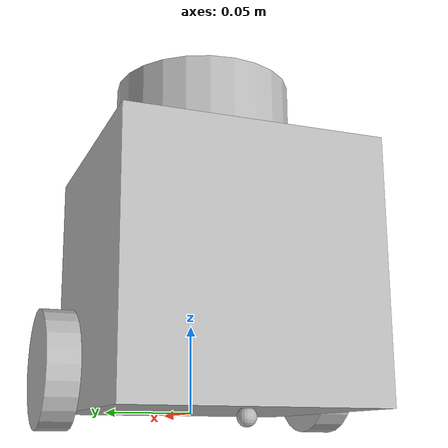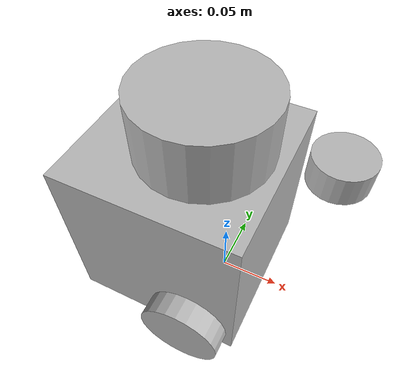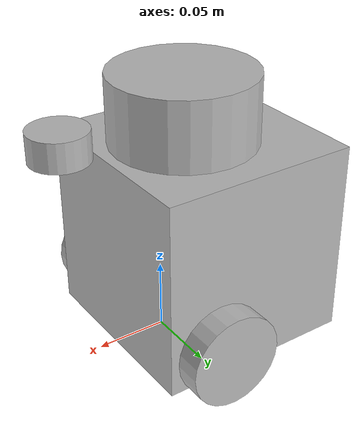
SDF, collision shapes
<?xml version="1.0" ?>
<sdf version="1.5">
  <model name="turtlebot3_burger">

    <link name="base">

      <inertial>
        <pose>-0.032 0 0.070 0 0 0</pose>
        <inertia>
          <ixx>0.001</ixx>
          <ixy>0.000</ixy>
          <ixz>0.000</ixz>
          <iyy>0.001</iyy>
          <iyz>0.000</iyz>
          <izz>0.001</izz>
        </inertia>
        <mass>1.0</mass>
      </inertial>

      <collision name="base_collision">
        <pose>-0.032 0 0.070 0 0 0</pose>
        <geometry>
          <box>
            <size>0.140 0.140 0.140</size>
          </box>
        </geometry>
      </collision>

      <visual name="base_visual">
        <pose>-0.032 0 0 0 0 0</pose>
        <geometry>
          <mesh>
            <uri>model://turtlebot3_burger/meshes/burger_base.dae</uri>
            <scale>0.001 0.001 0.001</scale>
          </mesh>
        </geometry>
      </visual>

      <collision name="caster_collision">
        <pose>-0.081 0 -0.004 0 0 0</pose>
        <geometry>
          <sphere>
            <radius>0.005000</radius>
          </sphere>
        </geometry>
        <surface>
          <friction>
            <ode>
              <mu>100000.0</mu>
              <mu2>100000.0</mu2>
              <fdir1>0 0 0</fdir1>
              <slip1>0</slip1>
              <slip2>0</slip2>
            </ode>
          </friction>
        </surface>
      </collision>
    </link>

  <link name="lidar">
    <inertial>
      <pose>-0.020 0 0.161 0 0 0</pose>
      <inertia>
        <ixx>0.001</ixx>
        <ixy>0.000</ixy>
        <ixz>0.000</ixz>
        <iyy>0.001</iyy>
        <iyz>0.000</iyz>
        <izz>0.001</izz>
      </inertia>
      <mass>0.125</mass>
    </inertial>

    <collision name="lidar_sensor_collision">
        <pose>-0.020 0 0.161 0 0 0</pose>
        <geometry>
          <cylinder>
            <radius>0.0508</radius>
            <length>0.055</length>
          </cylinder>
        </geometry>
      </collision>

      <visual name="lidar_sensor_visual">
        <pose>-0.032 0 0.171 0 0 0</pose>
        <geometry>
          <mesh>
            <uri>model://turtlebot3_burger/meshes/lds.dae</uri>
            <scale>0.001 0.001 0.001</scale>
          </mesh>
        </geometry>
      </visual>

      <sensor name="hls_lfcd_lds" type="ray">
        <always_on>1</always_on>
        <visualize>0</visualize>
        <pose>-0.032 0 0.171 0 0 0</pose>
        <update_rate>1800</update_rate>
        <ray>
          <scan>
            <horizontal>
              <samples>360</samples>
              <resolution>1.000000</resolution>
              <min_angle>0.000000</min_angle>
              <max_angle>6.280000</max_angle>
            </horizontal>
          </scan>
          <range>
            <min>0.120000</min>
            <max>3.5</max>
            <resolution>0.015000</resolution>
          </range>
          <noise>
            <type>gaussian</type>
            <mean>0.0</mean>
            <stddev>0.01</stddev>
          </noise>
        </ray>
      </sensor>

    </link>

  <!-- Camera -->
  <link name="camera">
    <inertial>
      <pose>0.070 0 0.161 0 0 0</pose>
      <inertia>
        <ixx>0.001</ixx>
        <ixy>0.000</ixy>
        <ixz>0.000</ixz>
        <iyy>0.001</iyy>
        <iyz>0.000</iyz>
        <izz>0.001</izz>
      </inertia>
      <mass>0.125</mass>
    </inertial>

    <collision name="camera_sensor_collision">
        <pose>0.07 0 0.161 0 0 0</pose>
        <geometry>
          <cylinder>
            <radius>0.02</radius>
            <length>0.02</length>
          </cylinder>
        </geometry>
      </collision>

      <visual name="camera_sensor_visual">
        <pose>0.07 0 0.125 0 0 0</pose>
        <geometry>
          <cylinder>
            <radius>0.02</radius>
            <length>0.02</length>
          </cylinder>
        </geometry>
      </visual>

    <sensor type="camera" name="camera">
      <update_rate>20.0</update_rate>
      <camera name="user_camera">
        <pose>0.07 0 0.125 0 0 0</pose>
        <horizontal_fov>1.3962634</horizontal_fov>
        <image>
          <width>640</width>
          <height>480</height>
          <format>R8G8B8</format>
        </image>
        <clip>
          <near>0.05</near>
          <far>400</far>
        </clip>
        <noise>
          <type>gaussian</type>
          <!-- Noise is sampled independently per pixel on each frame.
               That pixel's noise value is added to each of its color
               channels, which at that point lie in the range [0,1]. -->
          <mean>0.0</mean>
          <stddev>0.007</stddev>
        </noise>
      </camera>
      <plugin name="camera_controller" filename="libgazebo_ros_camera.so">
        <alwaysOn>true</alwaysOn>
        <updateRate>0.0</updateRate>
        <cameraName>gazebo_cam</cameraName>
        <imageTopicName>image_raw</imageTopicName>
        <cameraInfoTopicName>camera_info</cameraInfoTopicName>
        <frameName>camera_link</frameName>
        <hackBaseline>0.07</hackBaseline>
        <distortionK1>0.0</distortionK1>
        <distortionK2>0.0</distortionK2>
        <distortionK3>0.0</distortionK3>
        <distortionT1>0.0</distortionT1>
        <distortionT2>0.0</distortionT2>
      </plugin>
    </sensor>

  </link>

    <link name="left_wheel">

      <inertial>
        <pose>0 0.08 0.023 -1.57 0 0</pose>
        <inertia>
          <ixx>0.001</ixx>
          <ixy>0.000</ixy>
          <ixz>0.000</ixz>
          <iyy>0.001</iyy>
          <iyz>0.000</iyz>
          <izz>0.001</izz>
        </inertia>
        <mass>0.1</mass>
      </inertial>

      <collision name="left_wheel_collision">
        <pose>0 0.08 0.023 -1.57 0 0</pose>
        <geometry>
          <cylinder>
            <radius>0.033</radius>
            <length>0.018</length>
          </cylinder>
        </geometry>
          <surface>
          <!-- This friction pamareter don't contain reliable data!! -->
            <friction>
              <ode>
                <mu>100000.0</mu>
                <mu2>100000.0</mu2>
                <fdir1>0 0 0</fdir1>
                <slip1>0.0</slip1>
                <slip2>0.0</slip2>
              </ode>
          </friction>
        </surface>
      </collision>

      <visual name="left_wheel_visual">
        <pose>0 0.08 0.023 0 0 0</pose>
        <geometry>
          <mesh>
            <uri>model://turtlebot3_burger/meshes/left_tire.dae</uri>
            <scale>0.001 0.001 0.001</scale>
          </mesh>
        </geometry>
      </visual>
    </link>

    <link name="right_wheel">

      <inertial>
        <pose>0.0 -0.08 0.023 -1.57 0 0</pose>
        <inertia>
          <ixx>0.001</ixx>
          <ixy>0.000</ixy>
          <ixz>0.000</ixz>
          <iyy>0.001</iyy>
          <iyz>0.000</iyz>
          <izz>0.001</izz>
        </inertia>
        <mass>0.1</mass>
      </inertial>

      <collision name="right_wheel_collision">
        <pose>0.0 -0.08 0.023 -1.57 0 0</pose>
        <geometry>
          <cylinder>
            <radius>0.033</radius>
            <length>0.018</length>
          </cylinder>
        </geometry>
          <surface>
          <!-- This friction pamareter don't contain reliable data!! -->
            <friction>
              <ode>
                <mu>100000.0</mu>
                <mu2>100000.0</mu2>
                <fdir1>0 0 0</fdir1>
                <slip1>0.0</slip1>
                <slip2>0.0</slip2>
              </ode>
          </friction>
        </surface>
      </collision>

      <visual name="right_wheel_visual">
        <pose>0.0 -0.08 0.023 0 0 0</pose>
        <geometry>
          <mesh>
            <uri>model://turtlebot3_burger/meshes/right_tire.dae</uri>
            <scale>0.001 0.001 0.001</scale>
          </mesh>
        </geometry>
      </visual>
    </link>

    <joint name="left_wheel_joint" type="revolute">
      <parent>base</parent>
      <child>left_wheel</child>
      <pose>0.0 0.08 0.023 -1.57 0 0</pose>
      <axis>
        <xyz>0 1 0</xyz>
      </axis>
    </joint>

    <joint name="right_wheel_joint" type="revolute">
      <parent>base</parent>
      <child>right_wheel</child>
      <pose>0.0 -0.08 0.023 -1.57 0 0</pose>
      <axis>
        <xyz>0 1 0</xyz>
      </axis>
    </joint>

    <joint name="lidar_joint" type="fixed">
      <parent>base</parent>
      <child>lidar</child>
      <pose>-0.032 0 0.171 0 0 0</pose>
      <axis>
        <xyz>0 0 1</xyz>
        <use_parent_model_frame>true</use_parent_model_frame>
      </axis>
    </joint>

    <joint name="camera_joint" type="fixed">
      <parent>base</parent>
      <child>camera</child>
      <pose>0.08 0 0.2 0 0 0</pose>
      <axis>
        <xyz>1 0 0</xyz>
        <use_parent_model_frame>true</use_parent_model_frame>
      </axis>
    </joint>

  <static>0</static>
  </model>
</sdf>
